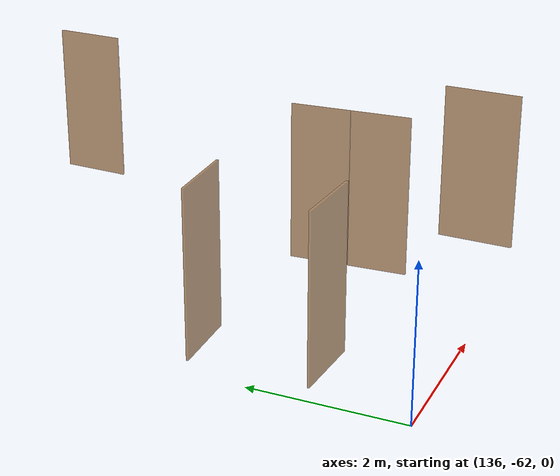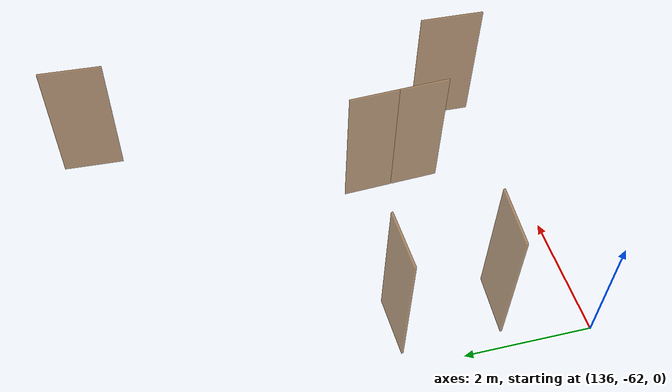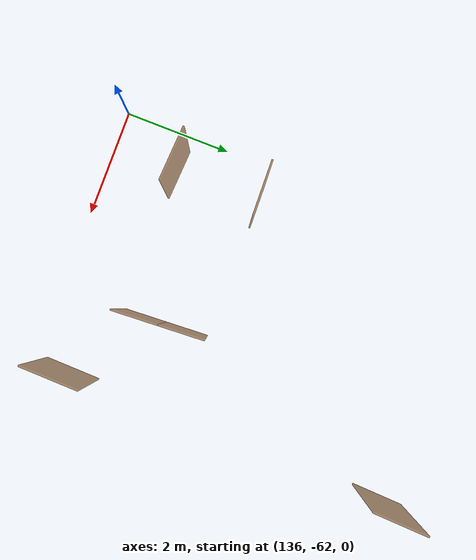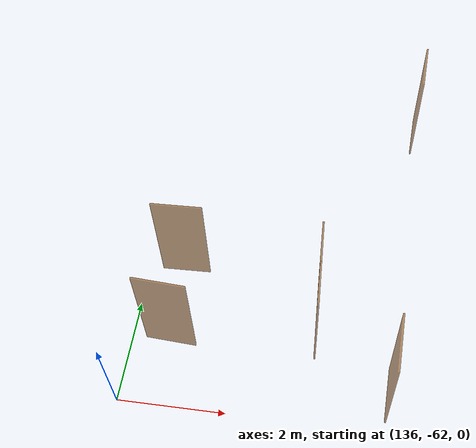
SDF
<sdf version="1.7">
 <world name="sim_world">
  <model name="puerta146">
   <pose>136.74281278531123 -60.69867342087435 0.0 0 0 3.0836650988396612</pose>
   <link name="right">
    <pose>0 0 1.11 0 0 0</pose>
    <visual name="right_visual">
     <geometry><box><size>0.9594440184884868 0.03 2.2</size></box></geometry>
     <material>
      <ambient>0.5 0.25 0 0.6</ambient>
      <diffuse>0.5 0.25 0 0.6</diffuse>
      <pbr><metal><metalness>0.0</metalness></metal></pbr>
     </material>
    </visual>
    <collision name="right_collision">
     <geometry><box><size>0.9594440184884868 0.03 2.2</size></box></geometry>
     <surface><contact><collide_bitmask>0x02</collide_bitmask></contact></surface>
    </collision>
    <inertial>
     <mass>50.0</mass>
     <inertia><ixx>20.17041666666667</ixx><iyy>24.00222010255557</iyy><izz>3.8393034358888998</izz></inertia>
    </inertial>
   </link>
   <joint name="right_joint" type="revolute">
    <parent>world</parent>
    <child>right</child>
    <axis><xyz>0 0 -1</xyz><limit><lower>0</lower><upper>1.57</upper></limit></axis>
    <pose>0.4847220092442434 0 0 0 0 0</pose>
   </joint>
   <plugin name="register_component" filename="libregister_component.so">
    <component name="Door">
     <v_max_door>0.5</v_max_door>
     <a_max_door>0.3</a_max_door>
     <a_nom_door>0.15</a_nom_door>
     <dx_min_door>0.01</dx_min_door>
     <f_max_door>500.0</f_max_door>
     <ros_interface>true</ros_interface>
     <door name="puerta146" type="SwingDoor" left_joint_name="empty_joint" right_joint_name="right_joint"/>
    </component>
   </plugin>
  </model>
  <model name="puerta147">
   <pose>136.72754008557757 -59.11443585676477 0.0 0 0 -3.110618760742401</pose>
   <link name="right">
    <pose>0 0 1.11 0 0 0</pose>
    <visual name="right_visual">
     <geometry><box><size>0.9437179433462687 0.03 2.2</size></box></geometry>
     <material>
      <ambient>0.5 0.25 0 0.6</ambient>
      <diffuse>0.5 0.25 0 0.6</diffuse>
      <pbr><metal><metalness>0.0</metalness></metal></pbr>
     </material>
    </visual>
    <collision name="right_collision">
     <geometry><box><size>0.9437179433462687 0.03 2.2</size></box></geometry>
     <surface><contact><collide_bitmask>0x02</collide_bitmask></contact></surface>
    </collision>
    <inertial>
     <mass>50.0</mass>
     <inertia><ixx>20.17041666666667</ixx><iyy>23.87751481914047</iyy><izz>3.7145981524737968</izz></inertia>
    </inertial>
   </link>
   <joint name="right_joint" type="revolute">
    <parent>world</parent>
    <child>right</child>
    <axis><xyz>0 0 1</xyz><limit><lower>0</lower><upper>1.57</upper></limit></axis>
    <pose>0.47685897167313435 0 0 0 0 0</pose>
   </joint>
   <plugin name="register_component" filename="libregister_component.so">
    <component name="Door">
     <v_max_door>0.5</v_max_door>
     <a_max_door>0.3</a_max_door>
     <a_nom_door>0.15</a_nom_door>
     <dx_min_door>0.01</dx_min_door>
     <f_max_door>500.0</f_max_door>
     <ros_interface>true</ros_interface>
     <door name="puerta147" type="SwingDoor" left_joint_name="empty_joint" right_joint_name="right_joint"/>
    </component>
   </plugin>
  </model>
  <model name="puerta148">
   <pose>139.42885151822412 -59.91320226019124 0.0 0 0 -1.519125356661397</pose>
   <link name="right">
    <pose>0.4073107265420726 0 1.11 0 0 0</pose>
    <visual name="right_visual">
     <geometry><box><size>0.8046214530841452 0.03 2.2</size></box></geometry>
     <material>
      <ambient>0.5 0.25 0 0.6</ambient>
      <diffuse>0.5 0.25 0 0.6</diffuse>
      <pbr><metal><metalness>0.0</metalness></metal></pbr>
     </material>
    </visual>
    <collision name="right_collision">
     <geometry><box><size>0.8046214530841452 0.03 2.2</size></box></geometry>
     <surface><contact><collide_bitmask>0x02</collide_bitmask></contact></surface>
    </collision>
    <inertial>
     <mass>50.0</mass>
     <inertia><ixx>20.17041666666667</ixx><iyy>22.864232011513508</iyy><izz>2.701315344846839</izz></inertia>
    </inertial>
   </link>
   <joint name="right_joint" type="revolute">
    <parent>world</parent>
    <child>right</child>
    <axis><xyz>0 0 -1</xyz><limit><lower>0</lower><upper>1.57</upper></limit></axis>
    <pose>0.4073107265420726 0 0 0 0 0</pose>
   </joint>
   <link name="left">
    <pose>-0.4073107265420726 0 1.11 0 0 0</pose>
    <visual name="left_visual">
     <geometry><box><size>0.8046214530841452 0.03 2.2</size></box></geometry>
     <material>
      <ambient>0.5 0.25 0 0.6</ambient>
      <diffuse>0.5 0.25 0 0.6</diffuse>
      <pbr><metal><metalness>0.0</metalness></metal></pbr>
     </material>
    </visual>
    <collision name="left_collision">
     <geometry><box><size>0.8046214530841452 0.03 2.2</size></box></geometry>
     <surface><contact><collide_bitmask>0x02</collide_bitmask></contact></surface>
    </collision>
    <inertial>
     <mass>50.0</mass>
     <inertia><ixx>20.17041666666667</ixx><iyy>22.864232011513508</iyy><izz>2.701315344846839</izz></inertia>
    </inertial>
   </link>
   <joint name="left_joint" type="revolute">
    <parent>world</parent>
    <child>left</child>
    <axis><xyz>0 0 -1</xyz><limit><lower>-1.57</lower><upper>0</upper></limit></axis>
    <pose>-0.4073107265420726 0 0 0 0 0</pose>
   </joint>
   <plugin name="register_component" filename="libregister_component.so">
    <component name="Door">
     <v_max_door>0.5</v_max_door>
     <a_max_door>0.3</a_max_door>
     <a_nom_door>0.15</a_nom_door>
     <dx_min_door>0.01</dx_min_door>
     <f_max_door>500.0</f_max_door>
     <ros_interface>true</ros_interface>
     <door name="puerta148" type="DoubleSwingDoor" left_joint_name="left_joint" right_joint_name="right_joint"/>
    </component>
   </plugin>
  </model>
  <model name="puerta153">
   <pose>141.03679752944092 -55.049268130545805 0.0 0 0 1.5250060288543885</pose>
   <link name="right">
    <pose>0 0 1.11 0 0 0</pose>
    <visual name="right_visual">
     <geometry><box><size>0.9946335086918363 0.03 2.2</size></box></geometry>
     <material>
      <ambient>0.5 0.25 0 0.6</ambient>
      <diffuse>0.5 0.25 0 0.6</diffuse>
      <pbr><metal><metalness>0.0</metalness></metal></pbr>
     </material>
    </visual>
    <collision name="right_collision">
     <geometry><box><size>0.9946335086918363 0.03 2.2</size></box></geometry>
     <surface><contact><collide_bitmask>0x02</collide_bitmask></contact></surface>
    </collision>
    <inertial>
     <mass>50.0</mass>
     <inertia><ixx>20.17041666666667</ixx><iyy>24.28873256921931</iyy><izz>4.125815902552639</izz></inertia>
    </inertial>
   </link>
   <joint name="right_joint" type="revolute">
    <parent>world</parent>
    <child>right</child>
    <axis><xyz>0 0 1</xyz><limit><lower>0</lower><upper>1.57</upper></limit></axis>
    <pose>0.5023167543459182 0 0 0 0 0</pose>
   </joint>
   <plugin name="register_component" filename="libregister_component.so">
    <component name="Door">
     <v_max_door>0.5</v_max_door>
     <a_max_door>0.3</a_max_door>
     <a_nom_door>0.15</a_nom_door>
     <dx_min_door>0.01</dx_min_door>
     <f_max_door>500.0</f_max_door>
     <ros_interface>true</ros_interface>
     <door name="puerta153" type="SwingDoor" left_joint_name="empty_joint" right_joint_name="right_joint"/>
    </component>
   </plugin>
  </model>
  <model name="puerta155">
   <pose>140.87355214385784 -61.25972424993371 0.0 0 0 -1.5971164235752267</pose>
   <link name="right">
    <pose>0 0 1.11 0 0 0</pose>
    <visual name="right_visual">
     <geometry><box><size>1.0563448709832066 0.03 2.2</size></box></geometry>
     <material>
      <ambient>0.5 0.25 0 0.6</ambient>
      <diffuse>0.5 0.25 0 0.6</diffuse>
      <pbr><metal><metalness>0.0</metalness></metal></pbr>
     </material>
    </visual>
    <collision name="right_collision">
     <geometry><box><size>1.0563448709832066 0.03 2.2</size></box></geometry>
     <surface><contact><collide_bitmask>0x02</collide_bitmask></contact></surface>
    </collision>
    <inertial>
     <mass>50.0</mass>
     <inertia><ixx>20.17041666666667</ixx><iyy>24.816102026885535</iyy><izz>4.653185360218864</izz></inertia>
    </inertial>
   </link>
   <joint name="right_joint" type="revolute">
    <parent>world</parent>
    <child>right</child>
    <axis><xyz>0 0 1</xyz><limit><lower>0</lower><upper>1.57</upper></limit></axis>
    <pose>0.5331724354916033 0 0 0 0 0</pose>
   </joint>
   <plugin name="register_component" filename="libregister_component.so">
    <component name="Door">
     <v_max_door>0.5</v_max_door>
     <a_max_door>0.3</a_max_door>
     <a_nom_door>0.15</a_nom_door>
     <dx_min_door>0.01</dx_min_door>
     <f_max_door>500.0</f_max_door>
     <ros_interface>true</ros_interface>
     <door name="puerta155" type="SwingDoor" left_joint_name="empty_joint" right_joint_name="right_joint"/>
    </component>
   </plugin>
  </model>
 </world>
</sdf>
